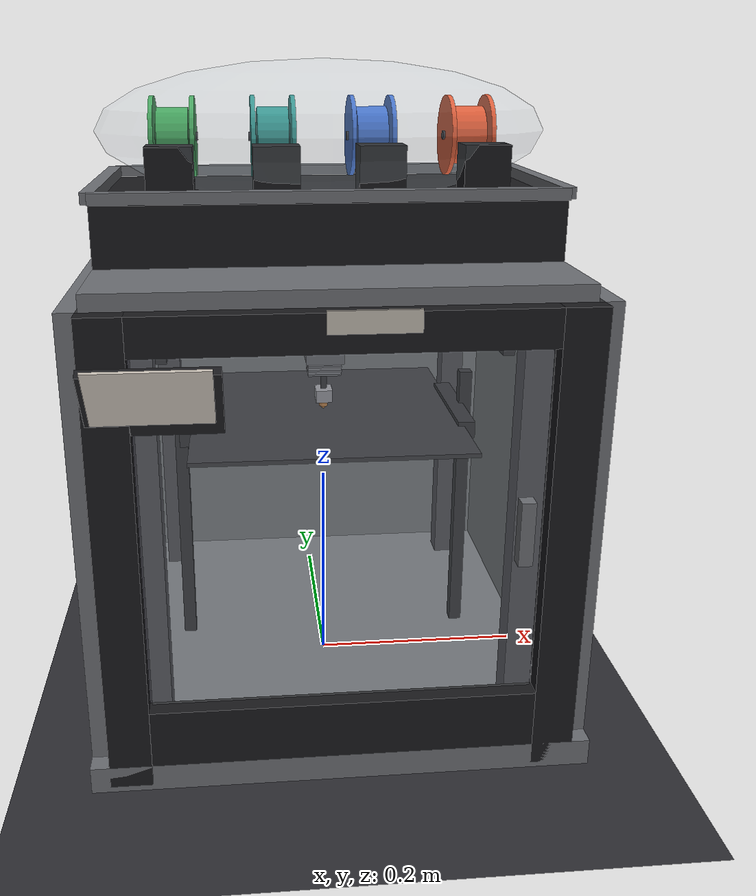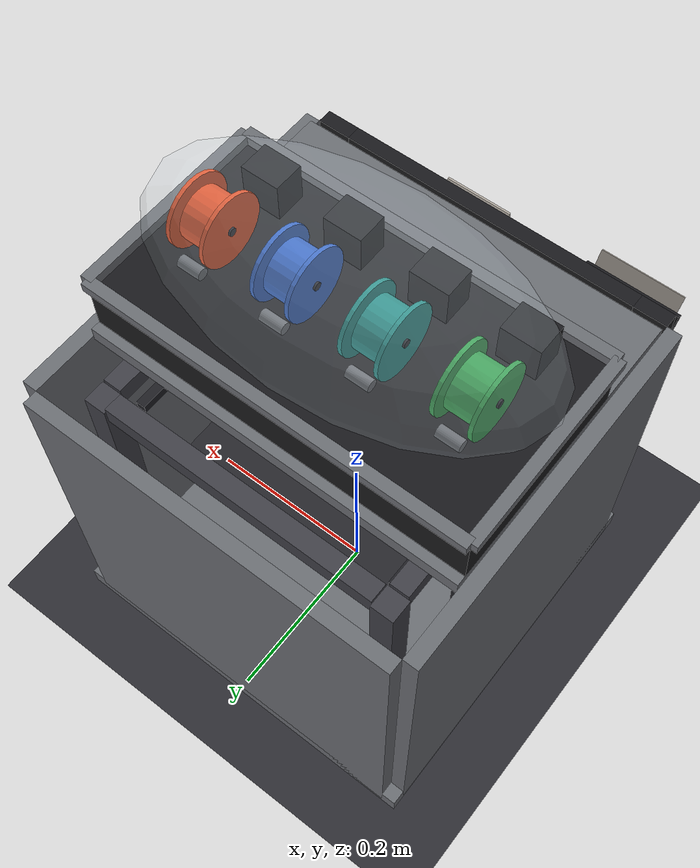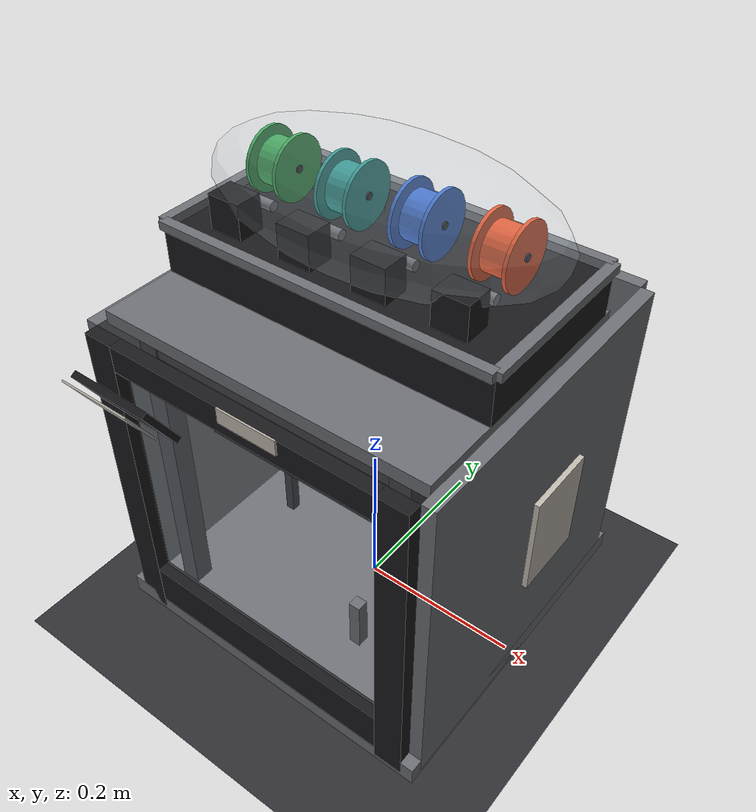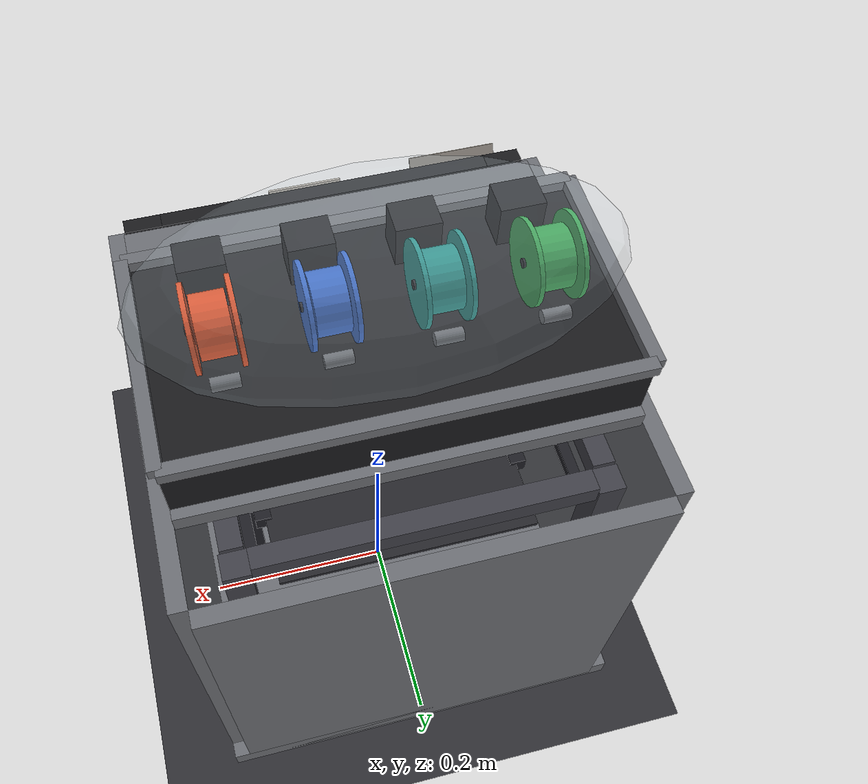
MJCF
<mujoco model="CoreXY_FDM_Printer">

  <!--  COMPILER / OPTIONS / DEFAULTS                                      -->
  <compiler angle="radian" coordinate="local" inertiafromgeom="auto"/>

  <option timestep="0.001" gravity="0 0 -9.81" integrator="implicit">
    <flag contact="enable" gravity="enable"/>
  </option>

  <default>
    <!-- Global contact / friction defaults -->
    <geom condim="3" friction="0.8 0.005 0.001" solref="0.002 1.0"
          solimp="0.9 0.95 0.001" margin="0.0005"/>
    <joint damping="2.0" armature="0.01"/>
    <!-- Default actuator gains (overridden per-actuator below) -->
    <general ctrllimited="true" forcelimited="true"/>
  </default>

  <!--  ASSETS — materials & meshes                                        -->
  <asset>
    <texture name="tex_logo"   type="2d" file="assets/side_logo.png"/>
    <texture name="tex_badge"  type="2d" file="assets/front_badge.png"/>
    <texture name="tex_screen" type="2d" file="assets/screen.png"/>
    <material name="mat_logo"   texture="tex_logo"   rgba="1 1 1 1" emission="0.15"/>
    <material name="mat_badge"  texture="tex_badge"  rgba="1 1 1 1" emission="0.2"/>
    <material name="mat_screen" texture="tex_screen" rgba="1 1 1 1" emission="0.45"/>
    <!-- Painted enclosure (X1E-class gray) -->
    <material name="mat_shell"  rgba="0.42 0.43 0.45 1" shininess="0.45" specular="0.35"/>
    <material name="mat_shell_dark" rgba="0.10 0.10 0.11 1" shininess="0.3" specular="0.2"/>
    <!-- Chamber glass and AMS dome -->
    <material name="mat_glass"  rgba="0.82 0.86 0.88 0.10" shininess="0.9" specular="0.6"/>
    <material name="mat_dome"   rgba="0.80 0.86 0.90 0.16" shininess="0.9" specular="0.5"/>
    <!-- Frame / structural aluminium -->
    <material name="mat_frame"    rgba="0.25 0.25 0.28 1"  shininess="0.3" specular="0.4"/>
    <!-- Anodised black motion components -->
    <material name="mat_rail"     rgba="0.12 0.12 0.14 1"  shininess="0.6" specular="0.5"/>
    <!-- Heated bed — dark glass / PEI surface -->
    <material name="mat_bed"      rgba="0.15 0.15 0.17 1"  shininess="0.8" specular="0.7"/>
    <!-- Toolhead / extruder housing -->
    <material name="mat_toolhead" rgba="0.35 0.35 0.38 1"  shininess="0.4" specular="0.3"/>
    <!-- Copper nozzle -->
    <material name="mat_nozzle"   rgba="0.72 0.45 0.20 1"  shininess="0.9" specular="0.8"/>
    <!-- Deposited filament (PLA-like) -->
    <material name="mat_filament" rgba="0.1 0.6 0.95 1"    shininess="0.3" specular="0.2"/>
    <!-- LED accent strip -->
    <material name="mat_led"      rgba="0.95 0.95 1.0 0.6" emission="0.8"/>
    <!-- AMS spool colours. The orange spool is the one feeding the toolhead. -->
    <material name="mat_spool_g"  rgba="0.18 0.62 0.28 1" shininess="0.5" specular="0.35"/>
    <material name="mat_spool_c"  rgba="0.12 0.55 0.52 1" shininess="0.5" specular="0.35"/>
    <material name="mat_spool_b"  rgba="0.18 0.38 0.78 1" shininess="0.5" specular="0.35"/>
    <material name="mat_spool"    rgba="0.90 0.28 0.10 1" shininess="0.5" specular="0.4"/>
    <!-- Spool holder bracket — dark metal -->
    <material name="mat_spool_bracket" rgba="0.18 0.18 0.20 1" shininess="0.4" specular="0.3"/>
    <!-- Filament strand (thin red) -->
    <material name="mat_strand"   rgba="0.9 0.1 0.1 0.85" shininess="0.3" specular="0.2"/>
  </asset>

  <!--  WORLDBODY                                                          -->
  <worldbody>
    <!-- Ground plane -->
    <geom name="ground" type="plane" size="0.6 0.6 0.01"
          rgba="0.18 0.18 0.20 1" pos="0 0 0" contype="1" conaffinity="1"/>

    <!-- Ambient / key lights -->
    <light name="key_light"   pos="0.5 -0.5 1.2" dir="-0.4 0.4 -0.8"
           diffuse="0.9 0.9 0.95" specular="0.5 0.5 0.5" castshadow="true"/>
    <light name="fill_light"  pos="-0.4 0.3 0.9" dir="0.3 -0.2 -0.7"
           diffuse="0.4 0.4 0.45" specular="0.1 0.1 0.1"/>
    <!-- Rim light for spool highlight -->
    <light name="rim_light"   pos="0.3 0.4 0.8" dir="-0.3 -0.3 -0.6"
           diffuse="0.25 0.25 0.3" specular="0.2 0.2 0.2"/>

    <!--  PRINTER BASE FRAME                                             -->
    <body name="base_frame" pos="0 0 0.005">
      <!-- Bottom plate -->
      <geom name="base_plate" type="box" size="0.18 0.18 0.005"
            pos="0 0 0" mass="3.0" material="mat_frame"
            contype="1" conaffinity="1"/>

      <!-- Four vertical corner extrusions (2020 aluminium profile analogue) -->
      <geom name="pillar_FL" type="box" size="0.012 0.012 0.195"
            pos="-0.16 -0.16 0.2"  mass="0.25" material="mat_frame"/>
      <geom name="pillar_FR" type="box" size="0.012 0.012 0.195"
            pos=" 0.16 -0.16 0.2"  mass="0.25" material="mat_frame"/>
      <geom name="pillar_BL" type="box" size="0.012 0.012 0.195"
            pos="-0.16  0.16 0.2"  mass="0.25" material="mat_frame"/>
      <geom name="pillar_BR" type="box" size="0.012 0.012 0.195"
            pos=" 0.16  0.16 0.2"  mass="0.25" material="mat_frame"/>

      <!-- Top cross-beams (connect pillars) -->
      <geom name="top_beam_front" type="box" size="0.148 0.010 0.010"
            pos="0 -0.16 0.39" mass="0.2" material="mat_frame"/>
      <geom name="top_beam_back"  type="box" size="0.148 0.010 0.010"
            pos="0  0.16 0.39" mass="0.2" material="mat_frame"/>
      <geom name="top_beam_left"  type="box" size="0.010 0.148 0.010"
            pos="-0.16 0 0.39" mass="0.2" material="mat_frame"/>
      <geom name="top_beam_right" type="box" size="0.010 0.148 0.010"
            pos=" 0.16 0 0.39" mass="0.2" material="mat_frame"/>

      <!-- Chamber light bar, inside the top of the door opening -->
      <geom name="led_strip" type="box" size="0.15 0.004 0.004"
            pos="0 -0.15 0.385" material="mat_led" contype="0" conaffinity="0"/>

      <!--  ENCLOSURE — painted shell, glass door, screen, badge       -->
      <geom name="shell_left"  type="box" size="0.008 0.198 0.205"
            pos="-0.208 0 0.210" material="mat_shell" contype="0" conaffinity="0"/>
      <geom name="shell_right" type="box" size="0.008 0.198 0.205"
            pos=" 0.208 0 0.210" material="mat_shell" contype="0" conaffinity="0"/>
      <geom name="shell_back"  type="box" size="0.200 0.008 0.205"
            pos="0 0.206 0.210" material="mat_shell" contype="0" conaffinity="0"/>
      <!-- Top deck stops short of the rear so the feed tube can drop in -->
      <geom name="shell_top" type="box" size="0.200 0.155 0.008"
            pos="0 -0.030 0.418" material="mat_shell" contype="0" conaffinity="0"/>
      <geom name="shell_kick" type="box" size="0.216 0.214 0.012"
            pos="0 0 0.012" material="mat_shell" contype="0" conaffinity="0"/>

      <!-- Door frame -->
      <geom name="door_jamb_l" type="box" size="0.018 0.008 0.205"
            pos="-0.182 -0.206 0.210" material="mat_shell_dark" contype="0" conaffinity="0"/>
      <geom name="door_jamb_r" type="box" size="0.018 0.008 0.205"
            pos=" 0.182 -0.206 0.210" material="mat_shell_dark" contype="0" conaffinity="0"/>
      <geom name="door_lintel" type="box" size="0.164 0.008 0.016"
            pos="0 -0.206 0.399" material="mat_shell_dark" contype="0" conaffinity="0"/>
      <geom name="door_sill" type="box" size="0.164 0.008 0.028"
            pos="0 -0.206 0.048" material="mat_shell_dark" contype="0" conaffinity="0"/>
      <!-- Clear door. Low alpha so the chamber stays visible. -->
      <geom name="door_glass" type="box" size="0.162 0.003 0.158"
            pos="0 -0.198 0.220" material="mat_glass" contype="0" conaffinity="0"/>
      <geom name="door_handle" type="box" size="0.006 0.006 0.028"
            pos="0.145 -0.214 0.230" material="mat_shell" contype="0" conaffinity="0"/>

      <!-- Front model badge -->
      <geom name="front_badge" type="box" size="0.036 0.001 0.009"
            pos="0.02 -0.216 0.408" material="mat_badge" contype="0" conaffinity="0"/>

      <!-- Tilted touchscreen on the upper-left front -->
      <geom name="screen_bezel" type="box" size="0.052 0.004 0.034"
            pos="-0.145 -0.222 0.352" euler="0.55 0 0"
            material="mat_shell_dark" contype="0" conaffinity="0"/>
      <geom name="screen_face" type="box" size="0.046 0.001 0.029"
            pos="-0.145 -0.242 0.362" euler="0.55 0 0"
            material="mat_screen" contype="0" conaffinity="0"/>

      <!-- Side logo plate, proud of the right wall -->
      <geom name="side_logo" type="box" size="0.003 0.046 0.064"
            pos="0.224 0.02 0.220" material="mat_logo" contype="0" conaffinity="0"/>

      <!--  AMS — four spools seated in a bay under a clear dome       -->
      <!--  The orange spool is the active feed.                       -->
      <geom name="ams_body" type="box" size="0.200 0.105 0.026"
            pos="0 0.01 0.452" material="mat_shell_dark" contype="0" conaffinity="0"/>
      <geom name="ams_rim_f" type="box" size="0.200 0.006 0.005"
            pos="0 -0.095 0.484" material="mat_shell" contype="0" conaffinity="0"/>
      <geom name="ams_rim_b" type="box" size="0.200 0.006 0.005"
            pos="0  0.115 0.484" material="mat_shell" contype="0" conaffinity="0"/>
      <geom name="ams_rim_l" type="box" size="0.006 0.105 0.005"
            pos="-0.200 0.01 0.484" material="mat_shell" contype="0" conaffinity="0"/>
      <geom name="ams_rim_r" type="box" size="0.006 0.105 0.005"
            pos=" 0.200 0.01 0.484" material="mat_shell" contype="0" conaffinity="0"/>
      <geom name="ams_dome" type="ellipsoid" size="0.205 0.108 0.062"
            pos="0 0.01 0.530" material="mat_dome" contype="0" conaffinity="0"/>

      <!-- Axles run left–right, so each spool is seen edge-on from the door. -->
      <!-- Green -->
      <geom name="spool1_axle" type="cylinder" size="0.004 0.022" pos="-0.135 0.02 0.524" euler="0 1.5708 0" material="mat_rail" contype="0" conaffinity="0"/>
      <geom name="spool1_roll_f" type="cylinder" size="0.006 0.012" pos="-0.135 -0.012 0.492" euler="0 1.5708 0" material="mat_shell" contype="0" conaffinity="0"/>
      <geom name="spool1_roll_b" type="cylinder" size="0.006 0.012" pos="-0.135  0.052 0.492" euler="0 1.5708 0" material="mat_shell" contype="0" conaffinity="0"/>
      <geom name="spool1_barrel" type="cylinder" size="0.026 0.014" pos="-0.135 0.02 0.524" euler="0 1.5708 0" material="mat_spool_g" contype="0" conaffinity="0"/>
      <geom name="spool1_flange_f" type="cylinder" size="0.036 0.002" pos="-0.153 0.02 0.524" euler="0 1.5708 0" material="mat_spool_g" contype="0" conaffinity="0"/>
      <geom name="spool1_flange_b" type="cylinder" size="0.036 0.002" pos="-0.117 0.02 0.524" euler="0 1.5708 0" material="mat_spool_g" contype="0" conaffinity="0"/>
      <geom name="spool1_hub" type="cylinder" size="0.012 0.016" pos="-0.135 0.02 0.524" euler="0 1.5708 0" rgba="0.08 0.28 0.12 1" contype="0" conaffinity="0"/>
      <geom name="feeder1" type="box" size="0.020 0.016 0.020" pos="-0.135 -0.055 0.502" material="mat_shell_dark" contype="0" conaffinity="0"/>

      <!-- Teal -->
      <geom name="spool2_axle" type="cylinder" size="0.004 0.022" pos="-0.045 0.02 0.524" euler="0 1.5708 0" material="mat_rail" contype="0" conaffinity="0"/>
      <geom name="spool2_roll_f" type="cylinder" size="0.006 0.012" pos="-0.045 -0.012 0.492" euler="0 1.5708 0" material="mat_shell" contype="0" conaffinity="0"/>
      <geom name="spool2_roll_b" type="cylinder" size="0.006 0.012" pos="-0.045  0.052 0.492" euler="0 1.5708 0" material="mat_shell" contype="0" conaffinity="0"/>
      <geom name="spool2_barrel" type="cylinder" size="0.026 0.014" pos="-0.045 0.02 0.524" euler="0 1.5708 0" material="mat_spool_c" contype="0" conaffinity="0"/>
      <geom name="spool2_flange_f" type="cylinder" size="0.036 0.002" pos="-0.063 0.02 0.524" euler="0 1.5708 0" material="mat_spool_c" contype="0" conaffinity="0"/>
      <geom name="spool2_flange_b" type="cylinder" size="0.036 0.002" pos="-0.027 0.02 0.524" euler="0 1.5708 0" material="mat_spool_c" contype="0" conaffinity="0"/>
      <geom name="spool2_hub" type="cylinder" size="0.012 0.016" pos="-0.045 0.02 0.524" euler="0 1.5708 0" rgba="0.06 0.24 0.22 1" contype="0" conaffinity="0"/>
      <geom name="feeder2" type="box" size="0.020 0.016 0.020" pos="-0.045 -0.055 0.502" material="mat_shell_dark" contype="0" conaffinity="0"/>

      <!-- Blue -->
      <geom name="spool3_axle" type="cylinder" size="0.004 0.022" pos="0.045 0.02 0.524" euler="0 1.5708 0" material="mat_rail" contype="0" conaffinity="0"/>
      <geom name="spool3_roll_f" type="cylinder" size="0.006 0.012" pos="0.045 -0.012 0.492" euler="0 1.5708 0" material="mat_shell" contype="0" conaffinity="0"/>
      <geom name="spool3_roll_b" type="cylinder" size="0.006 0.012" pos="0.045  0.052 0.492" euler="0 1.5708 0" material="mat_shell" contype="0" conaffinity="0"/>
      <geom name="spool3_barrel" type="cylinder" size="0.026 0.014" pos="0.045 0.02 0.524" euler="0 1.5708 0" material="mat_spool_b" contype="0" conaffinity="0"/>
      <geom name="spool3_flange_f" type="cylinder" size="0.036 0.002" pos="0.027 0.02 0.524" euler="0 1.5708 0" material="mat_spool_b" contype="0" conaffinity="0"/>
      <geom name="spool3_flange_b" type="cylinder" size="0.036 0.002" pos="0.063 0.02 0.524" euler="0 1.5708 0" material="mat_spool_b" contype="0" conaffinity="0"/>
      <geom name="spool3_hub" type="cylinder" size="0.012 0.016" pos="0.045 0.02 0.524" euler="0 1.5708 0" rgba="0.08 0.16 0.36 1" contype="0" conaffinity="0"/>
      <geom name="feeder3" type="box" size="0.020 0.016 0.020" pos="0.045 -0.055 0.502" material="mat_shell_dark" contype="0" conaffinity="0"/>

      <!-- Orange — active spool, seated on the rollers and feeding the toolhead -->
      <geom name="spool_axle" type="cylinder" size="0.004 0.022" pos="0.135 0.02 0.524" euler="0 1.5708 0" material="mat_rail" contype="0" conaffinity="0"/>
      <geom name="spool_roll_f" type="cylinder" size="0.006 0.012" pos="0.135 -0.012 0.492" euler="0 1.5708 0" material="mat_shell" contype="0" conaffinity="0"/>
      <geom name="spool_roll_b" type="cylinder" size="0.006 0.012" pos="0.135  0.052 0.492" euler="0 1.5708 0" material="mat_shell" contype="0" conaffinity="0"/>
      <geom name="spool_barrel" type="cylinder" size="0.026 0.014" pos="0.135 0.02 0.524" euler="0 1.5708 0" material="mat_spool" contype="0" conaffinity="0"/>
      <geom name="spool_flange_L" type="cylinder" size="0.036 0.002" pos="0.117 0.02 0.524" euler="0 1.5708 0" material="mat_spool" contype="0" conaffinity="0"/>
      <geom name="spool_flange_R" type="cylinder" size="0.036 0.002" pos="0.153 0.02 0.524" euler="0 1.5708 0" material="mat_spool" contype="0" conaffinity="0"/>
      <geom name="spool_hub" type="cylinder" size="0.012 0.016" pos="0.135 0.02 0.524" euler="0 1.5708 0" rgba="0.45 0.12 0.04 1" contype="0" conaffinity="0"/>
      <geom name="feeder_active" type="box" size="0.020 0.016 0.020" pos="0.135 -0.055 0.502" material="mat_shell_dark" contype="0" conaffinity="0"/>
      <!-- Leaves the front of the orange spool into its feeder. -->
      <site name="spool_exit_site" pos="0.135 -0.006 0.510"
            size="0.002" rgba="0.9 0.28 0.1 0.6" group="3"/>

      <!--  Z-AXIS: HEATED BED ON LEAD-SCREW SLIDE                    -->
      <!-- Z linear rail visuals (left/right of bed) -->
      <geom name="z_rail_L" type="box" size="0.006 0.006 0.14"
            pos="-0.14 0 0.16" material="mat_rail" contype="0" conaffinity="0"/>
      <geom name="z_rail_R" type="box" size="0.006 0.006 0.14"
            pos=" 0.14 0 0.16" material="mat_rail" contype="0" conaffinity="0"/>

      <body name="bed_carriage" pos="0 0 0.26">
        <joint name="joint_z" type="slide" axis="0 0 1"
               range="-0.246 0.0" damping="8.0" armature="0.05"
               ref="0"/>
        <inertial pos="0 0 0" mass="1.2"
                  diaginertia="0.005 0.005 0.002"/>

        <!-- Bed support brackets -->
        <geom name="bed_bracket_L" type="box" size="0.008 0.06 0.008"
              pos="-0.13 0 0" material="mat_rail" contype="0" conaffinity="0"/>
        <geom name="bed_bracket_R" type="box" size="0.008 0.06 0.008"
              pos=" 0.13 0 0" material="mat_rail" contype="0" conaffinity="0"/>

        <!-- Heated print bed surface (256 × 256 mm, 4 mm thick) -->
        <geom name="print_bed" type="box" size="0.128 0.128 0.002"
              pos="0 0 0.002" mass="0.8" material="mat_bed"
              contype="1" conaffinity="1"
              friction="1.0 0.005 0.001"
              solref="0.001 1.2" solimp="0.95 0.99 0.001"/>
        <!-- Bed heater PCB (visual) -->
        <geom name="bed_heater" type="box" size="0.12 0.12 0.001"
              pos="0 0 -0.003" rgba="0.3 0.08 0.08 0.7"
              contype="0" conaffinity="0"/>

        <!-- Nozzle contact detection site (on bed surface) -->
        <site name="bed_surface_centre" pos="0 0 0.004" size="0.002"
              rgba="1 0 0 0" group="3"/>
      </body>

      <!--  COREXY GANTRY (Y-AXIS BEAM → X-AXIS CARRIAGE)             -->
      <!-- Y-axis: gantry beam slides front ↔ back along two rails -->
      <body name="y_gantry" pos="0 0 0.36">
        <!-- Y linear rail visuals -->
        <geom name="y_rail_L" type="box" size="0.005 0.135 0.005"
              pos="-0.145 0 0" material="mat_rail" contype="0" conaffinity="0"/>
        <geom name="y_rail_R" type="box" size="0.005 0.135 0.005"
              pos=" 0.145 0 0" material="mat_rail" contype="0" conaffinity="0"/>

        <body name="y_carriage" pos="0 0 0">
          <joint name="joint_y" type="slide" axis="0 1 0"
                 range="-0.128 0.128" damping="3.0" armature="0.02"/>
          <inertial pos="0 0 0" mass="0.35"
                    diaginertia="0.001 0.0005 0.0005"/>

          <!-- Cross-beam (the moving Y beam that carries X carriage) -->
          <geom name="y_beam" type="box" size="0.135 0.010 0.010"
                pos="0 0 0" mass="0.15" material="mat_rail"/>

          <!--  X-AXIS CARRIAGE (on the Y beam)                      -->
          <!-- X linear rail along Y beam -->
          <geom name="x_rail" type="box" size="0.125 0.004 0.004"
                pos="0 0 -0.012" material="mat_rail"
                contype="0" conaffinity="0"/>

          <body name="x_carriage" pos="0 0 -0.014">
            <joint name="joint_x" type="slide" axis="1 0 0"
                   range="-0.128 0.128" damping="3.0" armature="0.02"/>
            <inertial pos="0 0 0" mass="0.15"
                      diaginertia="0.0003 0.0003 0.0002"/>

            <!--  TOOLHEAD / EXTRUDER ASSEMBLY                   -->
            <body name="toolhead" pos="0 0 -0.01">
              <!-- Extruder motor + gears housing -->
              <geom name="extruder_housing" type="box"
                    size="0.018 0.022 0.02" pos="0 0 0"
                    mass="0.12" material="mat_toolhead"/>

              <geom name="filament_port" type="cylinder" size="0.0032 0.006"
                    pos="0 0.028 0.006" euler="1.5708 0 0"
                    material="mat_spool_bracket" contype="0" conaffinity="0"/>
              <site name="toolhead_inlet_site" pos="0 0.034 0.006"
                    size="0.002" rgba="0.9 0.1 0.1 0.5" group="3"/>

              <!-- Heat-sink fins (visual stack) -->
              <geom name="heatsink_1" type="box" size="0.016 0.016 0.001"
                    pos="0 0 -0.024" material="mat_toolhead"
                    contype="0" conaffinity="0"/>
              <geom name="heatsink_2" type="box" size="0.016 0.016 0.001"
                    pos="0 0 -0.028" material="mat_toolhead"
                    contype="0" conaffinity="0"/>
              <geom name="heatsink_3" type="box" size="0.016 0.016 0.001"
                    pos="0 0 -0.032" material="mat_toolhead"
                    contype="0" conaffinity="0"/>

              <!-- Heat-break tube -->
              <geom name="heatbreak" type="cylinder" size="0.003 0.008"
                    pos="0 0 -0.042" material="mat_rail"
                    contype="0" conaffinity="0"/>

              <!-- Heater block -->
              <geom name="heater_block" type="box" size="0.008 0.010 0.006"
                    pos="0 0 -0.056" mass="0.03"
                    rgba="0.55 0.55 0.58 1"/>

              <!--  HOTEND NOZZLE                              -->
              <body name="nozzle_body" pos="0 0 -0.064">
                <!-- Nozzle cone (truncated) -->
                <geom name="nozzle_cone" type="cylinder"
                      size="0.004 0.004" pos="0 0 0"
                      mass="0.008" material="mat_nozzle"
                      contype="0" conaffinity="0"/>
                <!-- Nozzle tip (the contact point for first-layer) -->
                <geom name="nozzle_tip" type="sphere"
                      size="0.002" pos="0 0 -0.005"
                      mass="0.002" material="mat_nozzle"
                      contype="2" conaffinity="1"
                      friction="0.3 0.001 0.0005"
                      solref="0.001 0.8" solimp="0.95 0.99 0.001"/>

                <!-- Nozzle tip tracking site -->
                <site name="nozzle_tip_site" pos="0 0 -0.005"
                      size="0.0015" rgba="1 0.3 0 0.9" group="0"/>
              </body>

              <!-- Part-cooling fan duct (visual) -->
              <geom name="fan_duct" type="box" size="0.014 0.006 0.014"
                    pos="0.020 0 -0.040" rgba="0.3 0.3 0.32 0.7"
                    contype="0" conaffinity="0"/>

            </body> <!-- /toolhead -->
          </body> <!-- /x_carriage -->
        </body> <!-- /y_carriage -->
      </body> <!-- /y_gantry -->

    </body> <!-- /base_frame -->
  </worldbody>

  <!--  ACTUATORS — position servos with PD gains                          -->
  <!--
    Gain tuning rationale (high-speed CoreXY):
      X/Y: light carriages → high kp for snappy tracking, moderate kv
      Z:   heavier bed + lead-screw reduction → higher kp, more damping
  -->
  <actuator>
    <!-- X-axis position servo -->
    <general name="act_x" joint="joint_x" gainprm="800 0 0"
             biasprm="0 -800 -40" biastype="affine"
             ctrlrange="-0.128 0.128" forcerange="-50 50"
             ctrllimited="true" forcelimited="true"/>

    <!-- Y-axis position servo -->
    <general name="act_y" joint="joint_y" gainprm="800 0 0"
             biasprm="0 -800 -40" biastype="affine"
             ctrlrange="-0.128 0.128" forcerange="-50 50"
             ctrllimited="true" forcelimited="true"/>

    <!-- Z-axis position servo (bed) -->
    <general name="act_z" joint="joint_z" gainprm="2000 0 0"
             biasprm="0 -2000 -120" biastype="affine"
             ctrlrange="-0.246 0.0" forcerange="-100 100"
             ctrllimited="true" forcelimited="true"/>
  </actuator>

  <!--  SENSORS                                                            -->
  <sensor>
    <!-- Joint positions -->
    <jointpos name="sens_x"  joint="joint_x"/>
    <jointpos name="sens_y"  joint="joint_y"/>
    <jointpos name="sens_z"  joint="joint_z"/>
    <!-- Joint velocities -->
    <jointvel name="sens_vx" joint="joint_x"/>
    <jointvel name="sens_vy" joint="joint_y"/>
    <jointvel name="sens_vz" joint="joint_z"/>
    <!-- Nozzle tip 3-D position in world frame -->
    <framepos name="sens_nozzle_pos" objtype="site" objname="nozzle_tip_site"/>
  </sensor>

  <!--  KEYFRAMES — useful starting poses                                  -->
  <keyframe>
    <!-- Home: X=0, Y=0, Z at top (bed fully raised) -->
    <key name="home"       qpos="0 0 0"   ctrl="0 0 0"/>
    <!-- Bed lowered 50 mm for first layer at Z = 0.2 mm -->
    <key name="print_start" qpos="0 0 -0.05" ctrl="0 0 -0.05"/>
  </keyframe>

</mujoco>
